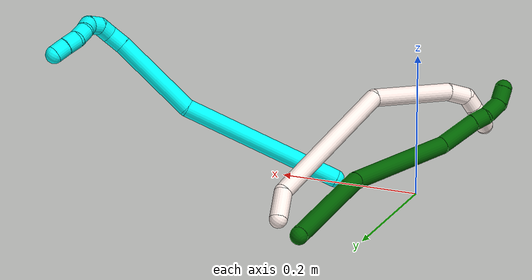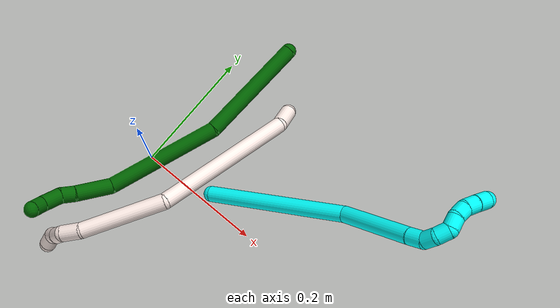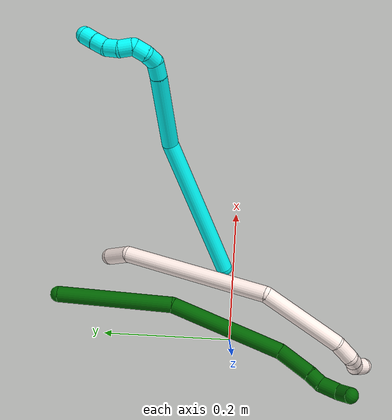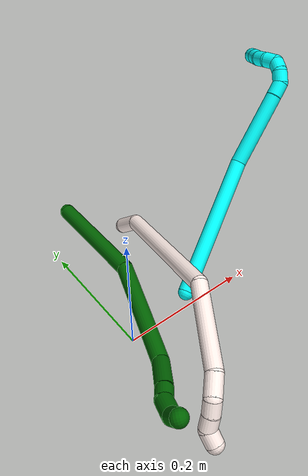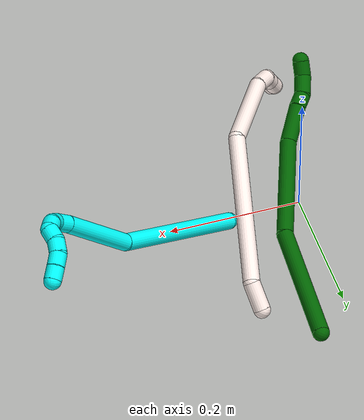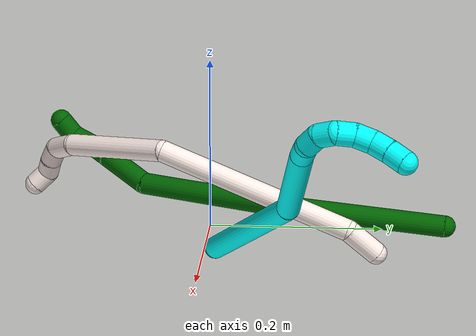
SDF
<sdf version="1.7">
 <world name="default">
  <model name="3">
   <static>0</static>
   <link name="3">
    <collision name="collision-cylinder-e_1_1_4">
     <pose>0.008518 0.000524 0.115912 -0.004522 0.073352 -0.000166</pose>
     <geometry><cylinder><radius>0.0125</radius><length>0.232451</length></cylinder></geometry>
     <surface>
      <friction><ode><mu>1.16</mu><mu2>1.16</mu2><slip1>0</slip1><slip2>0</slip2></ode></friction>
      <contact><ode><kp>1e+06</kp><kd>1</kd><max_vel>0</max_vel><min_depth>0.001</min_depth></ode></contact>
     </surface>
    </collision>
    <visual name="visual-cylinder-e_1_1_4">
     <pose>0.008518 0.000524 0.115912 -0.004522 0.073352 -0.000166</pose>
     <geometry><cylinder><radius>0.0125</radius><length>0.232451</length></cylinder></geometry>
     <material><ambient>0.003922 1 0.996078 1</ambient></material>
    </visual>
    <collision name="collision-cylinder-e_2_4_5">
     <pose>0.000416 0.002 0.291247 -0.016005 -0.272669 0.002196</pose>
     <geometry><cylinder><radius>0.0125</radius><length>0.123423</length></cylinder></geometry>
     <surface>
      <friction><ode><mu>1.16</mu><mu2>1.16</mu2><slip1>0</slip1><slip2>0</slip2></ode></friction>
      <contact><ode><kp>1e+06</kp><kd>1</kd><max_vel>0</max_vel><min_depth>0.001</min_depth></ode></contact>
     </surface>
    </collision>
    <visual name="visual-cylinder-e_2_4_5">
     <pose>0.000416 0.002 0.291247 -0.016005 -0.272669 0.002196</pose>
     <geometry><cylinder><radius>0.0125</radius><length>0.123423</length></cylinder></geometry>
     <material><ambient>0.003922 1 0.996078 1</ambient></material>
    </visual>
    <collision name="collision-cylinder-e_3_5_6">
     <pose>-0.018284 0.002938 0.362541 0.001063 -0.173564 -9.2e-05</pose>
     <geometry><cylinder><radius>0.0125</radius><length>0.024102</length></cylinder></geometry>
     <surface>
      <friction><ode><mu>1.16</mu><mu2>1.16</mu2><slip1>0</slip1><slip2>0</slip2></ode></friction>
      <contact><ode><kp>1e+06</kp><kd>1</kd><max_vel>0</max_vel><min_depth>0.001</min_depth></ode></contact>
     </surface>
    </collision>
    <visual name="visual-cylinder-e_3_5_6">
     <pose>-0.018284 0.002938 0.362541 0.001063 -0.173564 -9.2e-05</pose>
     <geometry><cylinder><radius>0.0125</radius><length>0.024102</length></cylinder></geometry>
     <material><ambient>0.003922 1 0.996078 1</ambient></material>
    </visual>
    <collision name="collision-cylinder-e_4_6_7">
     <pose>-0.020284 0.007702 0.383199 -0.497797 0.008084 -0.002055</pose>
     <geometry><cylinder><radius>0.0125</radius><length>0.020005</length></cylinder></geometry>
     <surface>
      <friction><ode><mu>1.16</mu><mu2>1.16</mu2><slip1>0</slip1><slip2>0</slip2></ode></friction>
      <contact><ode><kp>1e+06</kp><kd>1</kd><max_vel>0</max_vel><min_depth>0.001</min_depth></ode></contact>
     </surface>
    </collision>
    <visual name="visual-cylinder-e_4_6_7">
     <pose>-0.020284 0.007702 0.383199 -0.497797 0.008084 -0.002055</pose>
     <geometry><cylinder><radius>0.0125</radius><length>0.020005</length></cylinder></geometry>
     <material><ambient>0.003922 1 0.996078 1</ambient></material>
    </visual>
    <collision name="collision-cylinder-e_5_7_8">
     <pose>-0.015485 0.01684 0.399657 -0.517159 0.49105 -0.132364</pose>
     <geometry><cylinder><radius>0.0125</radius><length>0.020012</length></cylinder></geometry>
     <surface>
      <friction><ode><mu>1.16</mu><mu2>1.16</mu2><slip1>0</slip1><slip2>0</slip2></ode></friction>
      <contact><ode><kp>1e+06</kp><kd>1</kd><max_vel>0</max_vel><min_depth>0.001</min_depth></ode></contact>
     </surface>
    </collision>
    <visual name="visual-cylinder-e_5_7_8">
     <pose>-0.015485 0.01684 0.399657 -0.517159 0.49105 -0.132364</pose>
     <geometry><cylinder><radius>0.0125</radius><length>0.020012</length></cylinder></geometry>
     <material><ambient>0.003922 1 0.996078 1</ambient></material>
    </visual>
    <collision name="collision-cylinder-e_6_8_9">
     <pose>-0.003222 0.027683 0.408403 -1.40618 0.85442 -0.73652</pose>
     <geometry><cylinder><radius>0.0125</radius><length>0.020008</length></cylinder></geometry>
     <surface>
      <friction><ode><mu>1.16</mu><mu2>1.16</mu2><slip1>0</slip1><slip2>0</slip2></ode></friction>
      <contact><ode><kp>1e+06</kp><kd>1</kd><max_vel>0</max_vel><min_depth>0.001</min_depth></ode></contact>
     </surface>
    </collision>
    <visual name="visual-cylinder-e_6_8_9">
     <pose>-0.003222 0.027683 0.408403 -1.40618 0.85442 -0.73652</pose>
     <geometry><cylinder><radius>0.0125</radius><length>0.020008</length></cylinder></geometry>
     <material><ambient>0.003922 1 0.996078 1</ambient></material>
    </visual>
    <collision name="collision-cylinder-e_7_9_10">
     <pose>0.013371 0.037754 0.411771 -1.00273 1.13076 -0.669314</pose>
     <geometry><cylinder><radius>0.0125</radius><length>0.02</length></cylinder></geometry>
     <surface>
      <friction><ode><mu>1.16</mu><mu2>1.16</mu2><slip1>0</slip1><slip2>0</slip2></ode></friction>
      <contact><ode><kp>1e+06</kp><kd>1</kd><max_vel>0</max_vel><min_depth>0.001</min_depth></ode></contact>
     </surface>
    </collision>
    <visual name="visual-cylinder-e_7_9_10">
     <pose>0.013371 0.037754 0.411771 -1.00273 1.13076 -0.669314</pose>
     <geometry><cylinder><radius>0.0125</radius><length>0.02</length></cylinder></geometry>
     <material><ambient>0.003922 1 0.996078 1</ambient></material>
    </visual>
    <collision name="collision-cylinder-e_8_10_11">
     <pose>0.031335 0.042156 0.418516 -0.180344 1.10112 -0.110896</pose>
     <geometry><cylinder><radius>0.0125</radius><length>0.02</length></cylinder></geometry>
     <surface>
      <friction><ode><mu>1.16</mu><mu2>1.16</mu2><slip1>0</slip1><slip2>0</slip2></ode></friction>
      <contact><ode><kp>1e+06</kp><kd>1</kd><max_vel>0</max_vel><min_depth>0.001</min_depth></ode></contact>
     </surface>
    </collision>
    <visual name="visual-cylinder-e_8_10_11">
     <pose>0.031335 0.042156 0.418516 -0.180344 1.10112 -0.110896</pose>
     <geometry><cylinder><radius>0.0125</radius><length>0.02</length></cylinder></geometry>
     <material><ambient>0.003922 1 0.996078 1</ambient></material>
    </visual>
    <collision name="collision-cylinder-e_9_11_2">
     <pose>0.049357 0.04309 0.427103 -0.029415 1.14433 -0.018945</pose>
     <geometry><cylinder><radius>0.0125</radius><length>0.02</length></cylinder></geometry>
     <surface>
      <friction><ode><mu>1.16</mu><mu2>1.16</mu2><slip1>0</slip1><slip2>0</slip2></ode></friction>
      <contact><ode><kp>1e+06</kp><kd>1</kd><max_vel>0</max_vel><min_depth>0.001</min_depth></ode></contact>
     </surface>
    </collision>
    <visual name="visual-cylinder-e_9_11_2">
     <pose>0.049357 0.04309 0.427103 -0.029415 1.14433 -0.018945</pose>
     <geometry><cylinder><radius>0.0125</radius><length>0.02</length></cylinder></geometry>
     <material><ambient>0.003922 1 0.996078 1</ambient></material>
    </visual>
    <collision name="collision-sphere-2">
     <pose>0.058461 0.043211 0.431238 0 -0 0</pose>
     <geometry><sphere><radius>0.0125</radius></sphere></geometry>
     <surface>
      <friction><ode><mu>1.16</mu><mu2>1.16</mu2><slip1>0</slip1><slip2>0</slip2></ode></friction>
      <contact><ode><kp>1e+06</kp><kd>1</kd><max_vel>0</max_vel><min_depth>0.001</min_depth></ode></contact>
     </surface>
    </collision>
    <visual name="visual-sphere-2">
     <pose>0.058461 0.043211 0.431238 0 -0 0</pose>
     <geometry><sphere><radius>0.0125</radius></sphere></geometry>
     <material><ambient>0.003922 1 0.996078 1</ambient></material>
    </visual>
    <collision name="collision-sphere-11">
     <pose>0.040252 0.042968 0.422968 0 -0 0</pose>
     <geometry><sphere><radius>0.0125</radius></sphere></geometry>
     <surface>
      <friction><ode><mu>1.16</mu><mu2>1.16</mu2><slip1>0</slip1><slip2>0</slip2></ode></friction>
      <contact><ode><kp>1e+06</kp><kd>1</kd><max_vel>0</max_vel><min_depth>0.001</min_depth></ode></contact>
     </surface>
    </collision>
    <visual name="visual-sphere-11">
     <pose>0.040252 0.042968 0.422968 0 -0 0</pose>
     <geometry><sphere><radius>0.0125</radius></sphere></geometry>
     <material><ambient>0.003922 1 0.996078 1</ambient></material>
    </visual>
    <collision name="collision-sphere-10">
     <pose>0.022418 0.041344 0.414063 0 -0 0</pose>
     <geometry><sphere><radius>0.0125</radius></sphere></geometry>
     <surface>
      <friction><ode><mu>1.16</mu><mu2>1.16</mu2><slip1>0</slip1><slip2>0</slip2></ode></friction>
      <contact><ode><kp>1e+06</kp><kd>1</kd><max_vel>0</max_vel><min_depth>0.001</min_depth></ode></contact>
     </surface>
    </collision>
    <visual name="visual-sphere-10">
     <pose>0.022418 0.041344 0.414063 0 -0 0</pose>
     <geometry><sphere><radius>0.0125</radius></sphere></geometry>
     <material><ambient>0.003922 1 0.996078 1</ambient></material>
    </visual>
    <collision name="collision-sphere-9">
     <pose>0.004323 0.034163 0.40948 0 -0 0</pose>
     <geometry><sphere><radius>0.0125</radius></sphere></geometry>
     <surface>
      <friction><ode><mu>1.16</mu><mu2>1.16</mu2><slip1>0</slip1><slip2>0</slip2></ode></friction>
      <contact><ode><kp>1e+06</kp><kd>1</kd><max_vel>0</max_vel><min_depth>0.001</min_depth></ode></contact>
     </surface>
    </collision>
    <visual name="visual-sphere-9">
     <pose>0.004323 0.034163 0.40948 0 -0 0</pose>
     <geometry><sphere><radius>0.0125</radius></sphere></geometry>
     <material><ambient>0.003922 1 0.996078 1</ambient></material>
    </visual>
    <collision name="collision-sphere-4">
     <pose>0.017035 0.001048 0.231823 0 -0 0</pose>
     <geometry><sphere><radius>0.0125</radius></sphere></geometry>
     <surface>
      <friction><ode><mu>1.16</mu><mu2>1.16</mu2><slip1>0</slip1><slip2>0</slip2></ode></friction>
      <contact><ode><kp>1e+06</kp><kd>1</kd><max_vel>0</max_vel><min_depth>0.001</min_depth></ode></contact>
     </surface>
    </collision>
    <visual name="visual-sphere-4">
     <pose>0.017035 0.001048 0.231823 0 -0 0</pose>
     <geometry><sphere><radius>0.0125</radius></sphere></geometry>
     <material><ambient>0.003922 1 0.996078 1</ambient></material>
    </visual>
    <collision name="collision-sphere-1">
     <geometry><sphere><radius>0.0125</radius></sphere></geometry>
     <surface>
      <friction><ode><mu>1.16</mu><mu2>1.16</mu2><slip1>0</slip1><slip2>0</slip2></ode></friction>
      <contact><ode><kp>1e+06</kp><kd>1</kd><max_vel>0</max_vel><min_depth>0.001</min_depth></ode></contact>
     </surface>
    </collision>
    <visual name="visual-sphere-1">
     <geometry><sphere><radius>0.0125</radius></sphere></geometry>
     <material><ambient>0.003922 1 0.996078 1</ambient></material>
    </visual>
    <collision name="collision-sphere-8">
     <pose>-0.010766 0.021203 0.407327 0 -0 0</pose>
     <geometry><sphere><radius>0.0125</radius></sphere></geometry>
     <surface>
      <friction><ode><mu>1.16</mu><mu2>1.16</mu2><slip1>0</slip1><slip2>0</slip2></ode></friction>
      <contact><ode><kp>1e+06</kp><kd>1</kd><max_vel>0</max_vel><min_depth>0.001</min_depth></ode></contact>
     </surface>
    </collision>
    <visual name="visual-sphere-8">
     <pose>-0.010766 0.021203 0.407327 0 -0 0</pose>
     <geometry><sphere><radius>0.0125</radius></sphere></geometry>
     <material><ambient>0.003922 1 0.996078 1</ambient></material>
    </visual>
    <collision name="collision-sphere-5">
     <pose>-0.016203 0.002951 0.350671 0 -0 0</pose>
     <geometry><sphere><radius>0.0125</radius></sphere></geometry>
     <surface>
      <friction><ode><mu>1.16</mu><mu2>1.16</mu2><slip1>0</slip1><slip2>0</slip2></ode></friction>
      <contact><ode><kp>1e+06</kp><kd>1</kd><max_vel>0</max_vel><min_depth>0.001</min_depth></ode></contact>
     </surface>
    </collision>
    <visual name="visual-sphere-5">
     <pose>-0.016203 0.002951 0.350671 0 -0 0</pose>
     <geometry><sphere><radius>0.0125</radius></sphere></geometry>
     <material><ambient>0.003922 1 0.996078 1</ambient></material>
    </visual>
    <collision name="collision-sphere-6">
     <pose>-0.020365 0.002925 0.37441 0 -0 0</pose>
     <geometry><sphere><radius>0.0125</radius></sphere></geometry>
     <surface>
      <friction><ode><mu>1.16</mu><mu2>1.16</mu2><slip1>0</slip1><slip2>0</slip2></ode></friction>
      <contact><ode><kp>1e+06</kp><kd>1</kd><max_vel>0</max_vel><min_depth>0.001</min_depth></ode></contact>
     </surface>
    </collision>
    <visual name="visual-sphere-6">
     <pose>-0.020365 0.002925 0.37441 0 -0 0</pose>
     <geometry><sphere><radius>0.0125</radius></sphere></geometry>
     <material><ambient>0.003922 1 0.996078 1</ambient></material>
    </visual>
    <collision name="collision-sphere-7">
     <pose>-0.020203 0.012478 0.391987 0 -0 0</pose>
     <geometry><sphere><radius>0.0125</radius></sphere></geometry>
     <surface>
      <friction><ode><mu>1.16</mu><mu2>1.16</mu2><slip1>0</slip1><slip2>0</slip2></ode></friction>
      <contact><ode><kp>1e+06</kp><kd>1</kd><max_vel>0</max_vel><min_depth>0.001</min_depth></ode></contact>
     </surface>
    </collision>
    <visual name="visual-sphere-7">
     <pose>-0.020203 0.012478 0.391987 0 -0 0</pose>
     <geometry><sphere><radius>0.0125</radius></sphere></geometry>
     <material><ambient>0.003922 1 0.996078 1</ambient></material>
    </visual>
    <inertial>
     <pose>0.005384 0.007889 0.241222 0 -0 0</pose>
     <mass>0.5</mass>
     <inertia>
      <ixx>0.001219</ixx>
      <ixy>0</ixy>
      <ixz>0</ixz>
      <iyy>0.001229</iyy>
      <iyz>0</iyz>
      <izz>-1.6e-05</izz>
     </inertia>
    </inertial>
   </link>
   <pose>0.114374 0.015134 0.011838 0.778171 0.767015 1.36623</pose>
  </model>
  <model name="6">
   <static>0</static>
   <link name="6">
    <collision name="collision-cylinder-e_1_1_4">
     <pose>0.013011 -0.076803 0.046669 1.02478 0.14378 0.080972</pose>
     <geometry><cylinder><radius>0.0125</radius><length>0.181615</length></cylinder></geometry>
     <surface>
      <friction><ode><mu>1.16</mu><mu2>1.16</mu2><slip1>0</slip1><slip2>0</slip2></ode></friction>
      <contact><ode><kp>1e+06</kp><kd>1</kd><max_vel>0</max_vel><min_depth>0.001</min_depth></ode></contact>
     </surface>
    </collision>
    <visual name="visual-cylinder-e_1_1_4">
     <pose>0.013011 -0.076803 0.046669 1.02478 0.14378 0.080972</pose>
     <geometry><cylinder><radius>0.0125</radius><length>0.181615</length></cylinder></geometry>
     <material><ambient>0 0.392157 0.003922 1</ambient></material>
    </visual>
    <collision name="collision-cylinder-e_2_4_5">
     <pose>0.037002 -0.242036 0.113302 1.34875 0.120519 0.096384</pose>
     <geometry><cylinder><radius>0.0125</radius><length>0.182635</length></cylinder></geometry>
     <surface>
      <friction><ode><mu>1.16</mu><mu2>1.16</mu2><slip1>0</slip1><slip2>0</slip2></ode></friction>
      <contact><ode><kp>1e+06</kp><kd>1</kd><max_vel>0</max_vel><min_depth>0.001</min_depth></ode></contact>
     </surface>
    </collision>
    <visual name="visual-cylinder-e_2_4_5">
     <pose>0.037002 -0.242036 0.113302 1.34875 0.120519 0.096384</pose>
     <geometry><cylinder><radius>0.0125</radius><length>0.182635</length></cylinder></geometry>
     <material><ambient>0 0.392157 0.003922 1</ambient></material>
    </visual>
    <collision name="collision-cylinder-e_3_5_6">
     <pose>0.03906 -0.358568 0.137088 1.43567 -0.304733 -0.266595</pose>
     <geometry><cylinder><radius>0.0125</radius><length>0.059463</length></cylinder></geometry>
     <surface>
      <friction><ode><mu>1.16</mu><mu2>1.16</mu2><slip1>0</slip1><slip2>0</slip2></ode></friction>
      <contact><ode><kp>1e+06</kp><kd>1</kd><max_vel>0</max_vel><min_depth>0.001</min_depth></ode></contact>
     </surface>
    </collision>
    <visual name="visual-cylinder-e_3_5_6">
     <pose>0.03906 -0.358568 0.137088 1.43567 -0.304733 -0.266595</pose>
     <geometry><cylinder><radius>0.0125</radius><length>0.059463</length></cylinder></geometry>
     <material><ambient>0 0.392157 0.003922 1</ambient></material>
    </visual>
    <collision name="collision-cylinder-e_4_6_7">
     <pose>0.027377 -0.397057 0.140814 1.57984 -0.259918 -0.262254</pose>
     <geometry><cylinder><radius>0.0125</radius><length>0.021494</length></cylinder></geometry>
     <surface>
      <friction><ode><mu>1.16</mu><mu2>1.16</mu2><slip1>0</slip1><slip2>0</slip2></ode></friction>
      <contact><ode><kp>1e+06</kp><kd>1</kd><max_vel>0</max_vel><min_depth>0.001</min_depth></ode></contact>
     </surface>
    </collision>
    <visual name="visual-cylinder-e_4_6_7">
     <pose>0.027377 -0.397057 0.140814 1.57984 -0.259918 -0.262254</pose>
     <geometry><cylinder><radius>0.0125</radius><length>0.021494</length></cylinder></geometry>
     <material><ambient>0 0.392157 0.003922 1</ambient></material>
    </visual>
    <collision name="collision-cylinder-e_5_7_8">
     <pose>0.021608 -0.421734 0.145752 1.2323 -0.195954 -0.138979</pose>
     <geometry><cylinder><radius>0.0125</radius><length>0.030895</length></cylinder></geometry>
     <surface>
      <friction><ode><mu>1.16</mu><mu2>1.16</mu2><slip1>0</slip1><slip2>0</slip2></ode></friction>
      <contact><ode><kp>1e+06</kp><kd>1</kd><max_vel>0</max_vel><min_depth>0.001</min_depth></ode></contact>
     </surface>
    </collision>
    <visual name="visual-cylinder-e_5_7_8">
     <pose>0.021608 -0.421734 0.145752 1.2323 -0.195954 -0.138979</pose>
     <geometry><cylinder><radius>0.0125</radius><length>0.030895</length></cylinder></geometry>
     <material><ambient>0 0.392157 0.003922 1</ambient></material>
    </visual>
    <collision name="collision-cylinder-e_6_8_2">
     <pose>0.01153 -0.44327 0.157134 0.850954 -0.633161 -0.294755</pose>
     <geometry><cylinder><radius>0.0125</radius><length>0.023899</length></cylinder></geometry>
     <surface>
      <friction><ode><mu>1.16</mu><mu2>1.16</mu2><slip1>0</slip1><slip2>0</slip2></ode></friction>
      <contact><ode><kp>1e+06</kp><kd>1</kd><max_vel>0</max_vel><min_depth>0.001</min_depth></ode></contact>
     </surface>
    </collision>
    <visual name="visual-cylinder-e_6_8_2">
     <pose>0.01153 -0.44327 0.157134 0.850954 -0.633161 -0.294755</pose>
     <geometry><cylinder><radius>0.0125</radius><length>0.023899</length></cylinder></geometry>
     <material><ambient>0 0.392157 0.003922 1</ambient></material>
    </visual>
    <collision name="collision-sphere-2">
     <pose>0.004459 -0.450513 0.163485 0 -0 0</pose>
     <geometry><sphere><radius>0.0125</radius></sphere></geometry>
     <surface>
      <friction><ode><mu>1.16</mu><mu2>1.16</mu2><slip1>0</slip1><slip2>0</slip2></ode></friction>
      <contact><ode><kp>1e+06</kp><kd>1</kd><max_vel>0</max_vel><min_depth>0.001</min_depth></ode></contact>
     </surface>
    </collision>
    <visual name="visual-sphere-2">
     <pose>0.004459 -0.450513 0.163485 0 -0 0</pose>
     <geometry><sphere><radius>0.0125</radius></sphere></geometry>
     <material><ambient>0 0.392157 0.003922 1</ambient></material>
    </visual>
    <collision name="collision-sphere-4">
     <pose>0.026023 -0.153606 0.093337 0 -0 0</pose>
     <geometry><sphere><radius>0.0125</radius></sphere></geometry>
     <surface>
      <friction><ode><mu>1.16</mu><mu2>1.16</mu2><slip1>0</slip1><slip2>0</slip2></ode></friction>
      <contact><ode><kp>1e+06</kp><kd>1</kd><max_vel>0</max_vel><min_depth>0.001</min_depth></ode></contact>
     </surface>
    </collision>
    <visual name="visual-sphere-4">
     <pose>0.026023 -0.153606 0.093337 0 -0 0</pose>
     <geometry><sphere><radius>0.0125</radius></sphere></geometry>
     <material><ambient>0 0.392157 0.003922 1</ambient></material>
    </visual>
    <collision name="collision-sphere-1">
     <geometry><sphere><radius>0.0125</radius></sphere></geometry>
     <surface>
      <friction><ode><mu>1.16</mu><mu2>1.16</mu2><slip1>0</slip1><slip2>0</slip2></ode></friction>
      <contact><ode><kp>1e+06</kp><kd>1</kd><max_vel>0</max_vel><min_depth>0.001</min_depth></ode></contact>
     </surface>
    </collision>
    <visual name="visual-sphere-1">
     <geometry><sphere><radius>0.0125</radius></sphere></geometry>
     <material><ambient>0 0.392157 0.003922 1</ambient></material>
    </visual>
    <collision name="collision-sphere-8">
     <pose>0.0186 -0.436026 0.150783 0 -0 0</pose>
     <geometry><sphere><radius>0.0125</radius></sphere></geometry>
     <surface>
      <friction><ode><mu>1.16</mu><mu2>1.16</mu2><slip1>0</slip1><slip2>0</slip2></ode></friction>
      <contact><ode><kp>1e+06</kp><kd>1</kd><max_vel>0</max_vel><min_depth>0.001</min_depth></ode></contact>
     </surface>
    </collision>
    <visual name="visual-sphere-8">
     <pose>0.0186 -0.436026 0.150783 0 -0 0</pose>
     <geometry><sphere><radius>0.0125</radius></sphere></geometry>
     <material><ambient>0 0.392157 0.003922 1</ambient></material>
    </visual>
    <collision name="collision-sphere-5">
     <pose>0.04798 -0.330465 0.133267 0 -0 0</pose>
     <geometry><sphere><radius>0.0125</radius></sphere></geometry>
     <surface>
      <friction><ode><mu>1.16</mu><mu2>1.16</mu2><slip1>0</slip1><slip2>0</slip2></ode></friction>
      <contact><ode><kp>1e+06</kp><kd>1</kd><max_vel>0</max_vel><min_depth>0.001</min_depth></ode></contact>
     </surface>
    </collision>
    <visual name="visual-sphere-5">
     <pose>0.04798 -0.330465 0.133267 0 -0 0</pose>
     <geometry><sphere><radius>0.0125</radius></sphere></geometry>
     <material><ambient>0 0.392157 0.003922 1</ambient></material>
    </visual>
    <collision name="collision-sphere-6">
     <pose>0.030139 -0.386672 0.140908 0 -0 0</pose>
     <geometry><sphere><radius>0.0125</radius></sphere></geometry>
     <surface>
      <friction><ode><mu>1.16</mu><mu2>1.16</mu2><slip1>0</slip1><slip2>0</slip2></ode></friction>
      <contact><ode><kp>1e+06</kp><kd>1</kd><max_vel>0</max_vel><min_depth>0.001</min_depth></ode></contact>
     </surface>
    </collision>
    <visual name="visual-sphere-6">
     <pose>0.030139 -0.386672 0.140908 0 -0 0</pose>
     <geometry><sphere><radius>0.0125</radius></sphere></geometry>
     <material><ambient>0 0.392157 0.003922 1</ambient></material>
    </visual>
    <collision name="collision-sphere-7">
     <pose>0.024615 -0.407443 0.14072 0 -0 0</pose>
     <geometry><sphere><radius>0.0125</radius></sphere></geometry>
     <surface>
      <friction><ode><mu>1.16</mu><mu2>1.16</mu2><slip1>0</slip1><slip2>0</slip2></ode></friction>
      <contact><ode><kp>1e+06</kp><kd>1</kd><max_vel>0</max_vel><min_depth>0.001</min_depth></ode></contact>
     </surface>
    </collision>
    <visual name="visual-sphere-7">
     <pose>0.024615 -0.407443 0.14072 0 -0 0</pose>
     <geometry><sphere><radius>0.0125</radius></sphere></geometry>
     <material><ambient>0 0.392157 0.003922 1</ambient></material>
    </visual>
    <inertial>
     <pose>0.02595 -0.223263 0.09721 0 -0 0</pose>
     <mass>0.5</mass>
     <inertia>
      <ixx>0.001117</ixx>
      <ixy>0</ixy>
      <ixz>0</ixz>
      <iyy>0.000441</iyy>
      <iyz>0</iyz>
      <izz>0.000838</izz>
     </inertia>
    </inertial>
   </link>
   <pose>0.059695 0.273417 0.025162 -0.223673 1.2308 -0.807727</pose>
  </model>
  <model name="11">
   <static>0</static>
   <link name="11">
    <collision name="collision-cylinder-e_1_1_4">
     <pose>-0.016379 -0.004355 -0.012388 2.80353 -0.894995 -2.45835</pose>
     <geometry><cylinder><radius>0.0125</radius><length>0.041985</length></cylinder></geometry>
     <surface>
      <friction><ode><mu>1.16</mu><mu2>1.16</mu2><slip1>0</slip1><slip2>0</slip2></ode></friction>
      <contact><ode><kp>1e+06</kp><kd>1</kd><max_vel>0</max_vel><min_depth>0.001</min_depth></ode></contact>
     </surface>
    </collision>
    <visual name="visual-cylinder-e_1_1_4">
     <pose>-0.016379 -0.004355 -0.012388 2.80353 -0.894995 -2.45835</pose>
     <geometry><cylinder><radius>0.0125</radius><length>0.041985</length></cylinder></geometry>
     <material><ambient>1 0.933333 0.909804 1</ambient></material>
    </visual>
    <collision name="collision-cylinder-e_2_4_5">
     <pose>-0.094327 -0.084939 -0.085995 2.24742 -0.562018 -1.0838</pose>
     <geometry><cylinder><radius>0.0125</radius><length>0.231079</length></cylinder></geometry>
     <surface>
      <friction><ode><mu>1.16</mu><mu2>1.16</mu2><slip1>0</slip1><slip2>0</slip2></ode></friction>
      <contact><ode><kp>1e+06</kp><kd>1</kd><max_vel>0</max_vel><min_depth>0.001</min_depth></ode></contact>
     </surface>
    </collision>
    <visual name="visual-cylinder-e_2_4_5">
     <pose>-0.094327 -0.084939 -0.085995 2.24742 -0.562018 -1.0838</pose>
     <geometry><cylinder><radius>0.0125</radius><length>0.231079</length></cylinder></geometry>
     <material><ambient>1 0.933333 0.909804 1</ambient></material>
    </visual>
    <collision name="collision-cylinder-e_3_5_6">
     <pose>-0.162522 -0.223415 -0.168867 1.90557 -0.100171 -0.14079</pose>
     <geometry><cylinder><radius>0.0125</radius><length>0.132479</length></cylinder></geometry>
     <surface>
      <friction><ode><mu>1.16</mu><mu2>1.16</mu2><slip1>0</slip1><slip2>0</slip2></ode></friction>
      <contact><ode><kp>1e+06</kp><kd>1</kd><max_vel>0</max_vel><min_depth>0.001</min_depth></ode></contact>
     </surface>
    </collision>
    <visual name="visual-cylinder-e_3_5_6">
     <pose>-0.162522 -0.223415 -0.168867 1.90557 -0.100171 -0.14079</pose>
     <geometry><cylinder><radius>0.0125</radius><length>0.132479</length></cylinder></geometry>
     <material><ambient>1 0.933333 0.909804 1</ambient></material>
    </visual>
    <collision name="collision-cylinder-e_4_6_7">
     <pose>-0.166421 -0.301167 -0.193527 1.76227 0.170894 0.206967</pose>
     <geometry><cylinder><radius>0.0125</radius><length>0.03205</length></cylinder></geometry>
     <surface>
      <friction><ode><mu>1.16</mu><mu2>1.16</mu2><slip1>0</slip1><slip2>0</slip2></ode></friction>
      <contact><ode><kp>1e+06</kp><kd>1</kd><max_vel>0</max_vel><min_depth>0.001</min_depth></ode></contact>
     </surface>
    </collision>
    <visual name="visual-cylinder-e_4_6_7">
     <pose>-0.166421 -0.301167 -0.193527 1.76227 0.170894 0.206967</pose>
     <geometry><cylinder><radius>0.0125</radius><length>0.03205</length></cylinder></geometry>
     <material><ambient>1 0.933333 0.909804 1</ambient></material>
    </visual>
    <collision name="collision-cylinder-e_5_7_8">
     <pose>-0.16 -0.325579 -0.192236 1.12153 0.357566 0.226013</pose>
     <geometry><cylinder><radius>0.0125</radius><length>0.021117</length></cylinder></geometry>
     <surface>
      <friction><ode><mu>1.16</mu><mu2>1.16</mu2><slip1>0</slip1><slip2>0</slip2></ode></friction>
      <contact><ode><kp>1e+06</kp><kd>1</kd><max_vel>0</max_vel><min_depth>0.001</min_depth></ode></contact>
     </surface>
    </collision>
    <visual name="visual-cylinder-e_5_7_8">
     <pose>-0.16 -0.325579 -0.192236 1.12153 0.357566 0.226013</pose>
     <geometry><cylinder><radius>0.0125</radius><length>0.021117</length></cylinder></geometry>
     <material><ambient>1 0.933333 0.909804 1</ambient></material>
    </visual>
    <collision name="collision-cylinder-e_6_8_9">
     <pose>-0.151606 -0.342377 -0.183684 1.07603 0.482833 0.291765</pose>
     <geometry><cylinder><radius>0.0125</radius><length>0.020243</length></cylinder></geometry>
     <surface>
      <friction><ode><mu>1.16</mu><mu2>1.16</mu2><slip1>0</slip1><slip2>0</slip2></ode></friction>
      <contact><ode><kp>1e+06</kp><kd>1</kd><max_vel>0</max_vel><min_depth>0.001</min_depth></ode></contact>
     </surface>
    </collision>
    <visual name="visual-cylinder-e_6_8_9">
     <pose>-0.151606 -0.342377 -0.183684 1.07603 0.482833 0.291765</pose>
     <geometry><cylinder><radius>0.0125</radius><length>0.020243</length></cylinder></geometry>
     <material><ambient>1 0.933333 0.909804 1</ambient></material>
    </visual>
    <collision name="collision-cylinder-e_7_9_2">
     <pose>-0.148887 -0.359472 -0.174729 1.09886 -0.189356 -0.116164</pose>
     <geometry><cylinder><radius>0.0125</radius><length>0.021048</length></cylinder></geometry>
     <surface>
      <friction><ode><mu>1.16</mu><mu2>1.16</mu2><slip1>0</slip1><slip2>0</slip2></ode></friction>
      <contact><ode><kp>1e+06</kp><kd>1</kd><max_vel>0</max_vel><min_depth>0.001</min_depth></ode></contact>
     </surface>
    </collision>
    <visual name="visual-cylinder-e_7_9_2">
     <pose>-0.148887 -0.359472 -0.174729 1.09886 -0.189356 -0.116164</pose>
     <geometry><cylinder><radius>0.0125</radius><length>0.021048</length></cylinder></geometry>
     <material><ambient>1 0.933333 0.909804 1</ambient></material>
    </visual>
    <collision name="collision-sphere-2">
     <pose>-0.150868 -0.368678 -0.17003 0 -0 0</pose>
     <geometry><sphere><radius>0.0125</radius></sphere></geometry>
     <surface>
      <friction><ode><mu>1.16</mu><mu2>1.16</mu2><slip1>0</slip1><slip2>0</slip2></ode></friction>
      <contact><ode><kp>1e+06</kp><kd>1</kd><max_vel>0</max_vel><min_depth>0.001</min_depth></ode></contact>
     </surface>
    </collision>
    <visual name="visual-sphere-2">
     <pose>-0.150868 -0.368678 -0.17003 0 -0 0</pose>
     <geometry><sphere><radius>0.0125</radius></sphere></geometry>
     <material><ambient>1 0.933333 0.909804 1</ambient></material>
    </visual>
    <collision name="collision-sphere-9">
     <pose>-0.146907 -0.350266 -0.179428 0 -0 0</pose>
     <geometry><sphere><radius>0.0125</radius></sphere></geometry>
     <surface>
      <friction><ode><mu>1.16</mu><mu2>1.16</mu2><slip1>0</slip1><slip2>0</slip2></ode></friction>
      <contact><ode><kp>1e+06</kp><kd>1</kd><max_vel>0</max_vel><min_depth>0.001</min_depth></ode></contact>
     </surface>
    </collision>
    <visual name="visual-sphere-9">
     <pose>-0.146907 -0.350266 -0.179428 0 -0 0</pose>
     <geometry><sphere><radius>0.0125</radius></sphere></geometry>
     <material><ambient>1 0.933333 0.909804 1</ambient></material>
    </visual>
    <collision name="collision-sphere-4">
     <pose>-0.032757 -0.00871 -0.024776 0 -0 0</pose>
     <geometry><sphere><radius>0.0125</radius></sphere></geometry>
     <surface>
      <friction><ode><mu>1.16</mu><mu2>1.16</mu2><slip1>0</slip1><slip2>0</slip2></ode></friction>
      <contact><ode><kp>1e+06</kp><kd>1</kd><max_vel>0</max_vel><min_depth>0.001</min_depth></ode></contact>
     </surface>
    </collision>
    <visual name="visual-sphere-4">
     <pose>-0.032757 -0.00871 -0.024776 0 -0 0</pose>
     <geometry><sphere><radius>0.0125</radius></sphere></geometry>
     <material><ambient>1 0.933333 0.909804 1</ambient></material>
    </visual>
    <collision name="collision-sphere-1">
     <geometry><sphere><radius>0.0125</radius></sphere></geometry>
     <surface>
      <friction><ode><mu>1.16</mu><mu2>1.16</mu2><slip1>0</slip1><slip2>0</slip2></ode></friction>
      <contact><ode><kp>1e+06</kp><kd>1</kd><max_vel>0</max_vel><min_depth>0.001</min_depth></ode></contact>
     </surface>
    </collision>
    <visual name="visual-sphere-1">
     <geometry><sphere><radius>0.0125</radius></sphere></geometry>
     <material><ambient>1 0.933333 0.909804 1</ambient></material>
    </visual>
    <collision name="collision-sphere-8">
     <pose>-0.156305 -0.334488 -0.187941 0 -0 0</pose>
     <geometry><sphere><radius>0.0125</radius></sphere></geometry>
     <surface>
      <friction><ode><mu>1.16</mu><mu2>1.16</mu2><slip1>0</slip1><slip2>0</slip2></ode></friction>
      <contact><ode><kp>1e+06</kp><kd>1</kd><max_vel>0</max_vel><min_depth>0.001</min_depth></ode></contact>
     </surface>
    </collision>
    <visual name="visual-sphere-8">
     <pose>-0.156305 -0.334488 -0.187941 0 -0 0</pose>
     <geometry><sphere><radius>0.0125</radius></sphere></geometry>
     <material><ambient>1 0.933333 0.909804 1</ambient></material>
    </visual>
    <collision name="collision-sphere-5">
     <pose>-0.155898 -0.161167 -0.147213 0 -0 0</pose>
     <geometry><sphere><radius>0.0125</radius></sphere></geometry>
     <surface>
      <friction><ode><mu>1.16</mu><mu2>1.16</mu2><slip1>0</slip1><slip2>0</slip2></ode></friction>
      <contact><ode><kp>1e+06</kp><kd>1</kd><max_vel>0</max_vel><min_depth>0.001</min_depth></ode></contact>
     </surface>
    </collision>
    <visual name="visual-sphere-5">
     <pose>-0.155898 -0.161167 -0.147213 0 -0 0</pose>
     <geometry><sphere><radius>0.0125</radius></sphere></geometry>
     <material><ambient>1 0.933333 0.909804 1</ambient></material>
    </visual>
    <collision name="collision-sphere-6">
     <pose>-0.169146 -0.285664 -0.190521 0 -0 0</pose>
     <geometry><sphere><radius>0.0125</radius></sphere></geometry>
     <surface>
      <friction><ode><mu>1.16</mu><mu2>1.16</mu2><slip1>0</slip1><slip2>0</slip2></ode></friction>
      <contact><ode><kp>1e+06</kp><kd>1</kd><max_vel>0</max_vel><min_depth>0.001</min_depth></ode></contact>
     </surface>
    </collision>
    <visual name="visual-sphere-6">
     <pose>-0.169146 -0.285664 -0.190521 0 -0 0</pose>
     <geometry><sphere><radius>0.0125</radius></sphere></geometry>
     <material><ambient>1 0.933333 0.909804 1</ambient></material>
    </visual>
    <collision name="collision-sphere-7">
     <pose>-0.163696 -0.316669 -0.196532 0 -0 0</pose>
     <geometry><sphere><radius>0.0125</radius></sphere></geometry>
     <surface>
      <friction><ode><mu>1.16</mu><mu2>1.16</mu2><slip1>0</slip1><slip2>0</slip2></ode></friction>
      <contact><ode><kp>1e+06</kp><kd>1</kd><max_vel>0</max_vel><min_depth>0.001</min_depth></ode></contact>
     </surface>
    </collision>
    <visual name="visual-sphere-7">
     <pose>-0.163696 -0.316669 -0.196532 0 -0 0</pose>
     <geometry><sphere><radius>0.0125</radius></sphere></geometry>
     <material><ambient>1 0.933333 0.909804 1</ambient></material>
    </visual>
    <inertial>
     <pose>-0.117861 -0.160865 -0.120842 0 -0 0</pose>
     <mass>0.5</mass>
     <inertia>
      <ixx>-0.000206</ixx>
      <ixy>0</ixy>
      <ixz>0</ixz>
      <iyy>-0.00081</iyy>
      <iyz>0</iyz>
      <izz>0.001445</izz>
     </inertia>
    </inertial>
   </link>
   <pose>0.122527 0.196715 0.012404 2.64384 0.350764 2.43658</pose>
  </model>
 </world>
</sdf>
